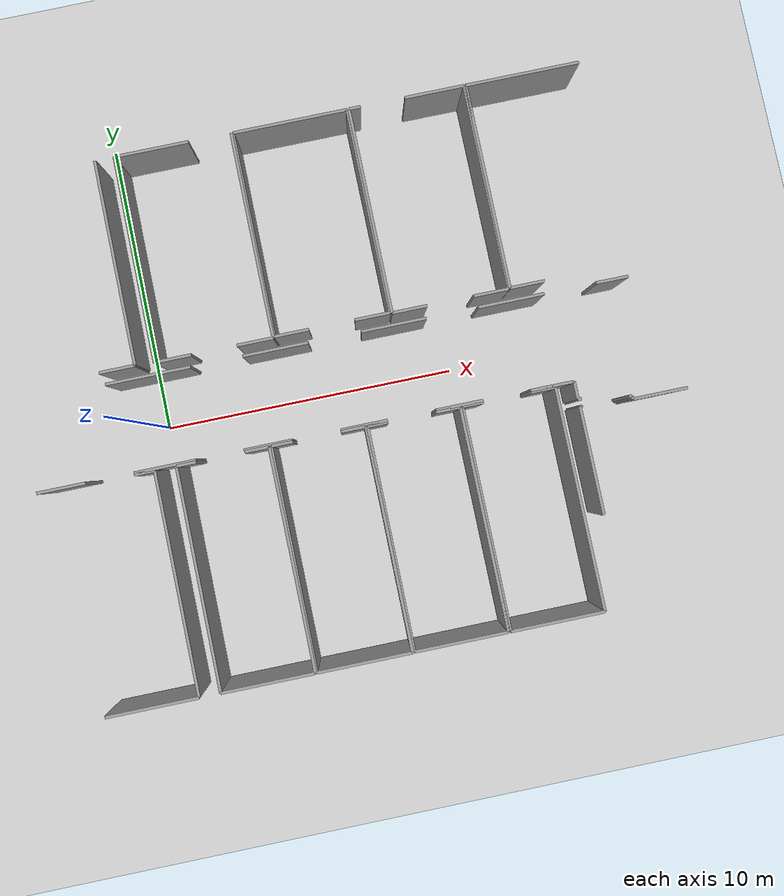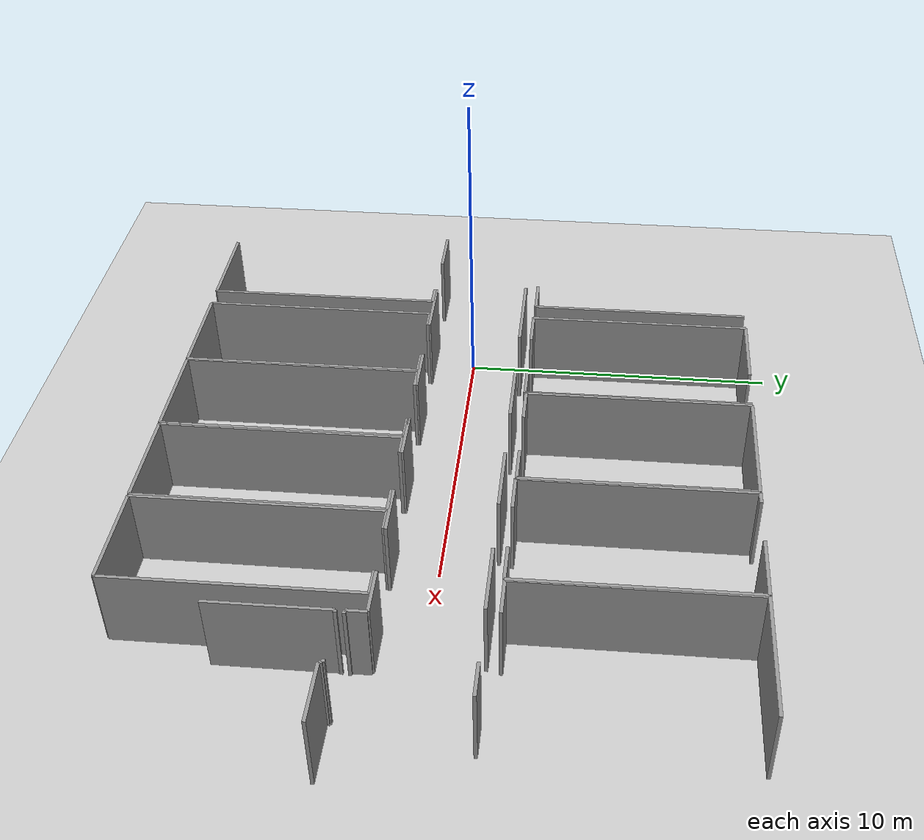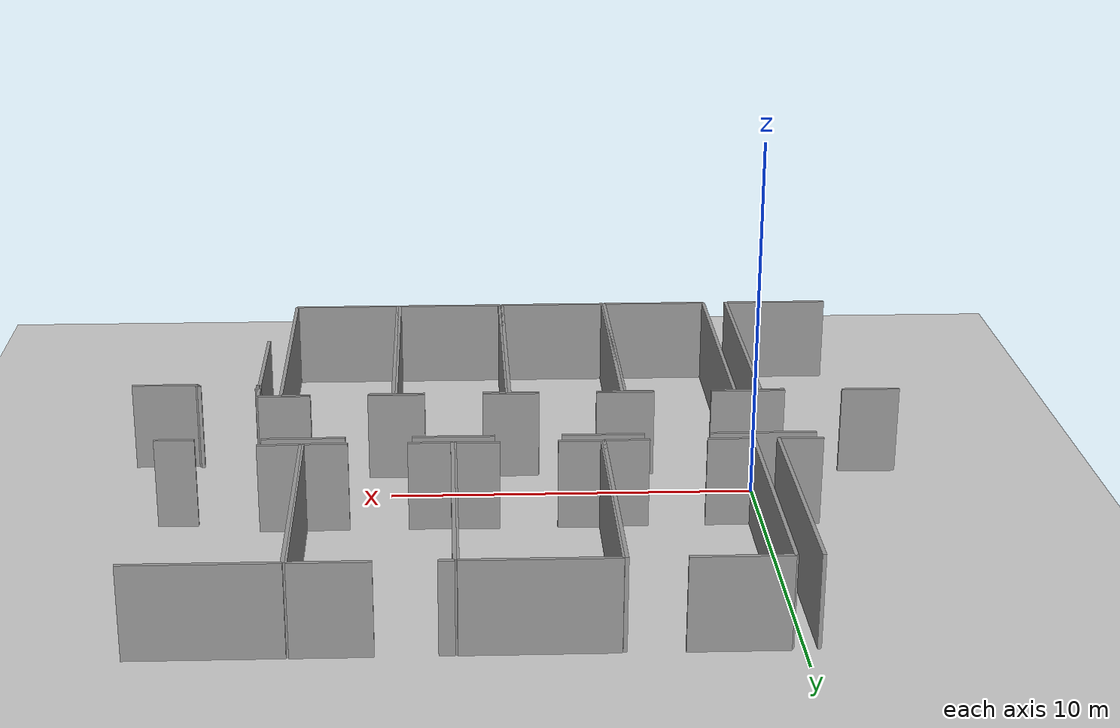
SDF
<sdf version="1.6">
 <world name="default">
  <model name="ground_plane">
   <static>1</static>
   <link name="link">
    <collision name="collision">
     <geometry><plane><normal>0 0 1</normal><size>100 100</size></plane></geometry>
     <surface><friction><ode><mu>100</mu><mu2>50</mu2></ode></friction></surface>
    </collision>
    <visual name="visual">
     <cast_shadows>0</cast_shadows>
     <geometry><plane><normal>0 0 1</normal><size>100 100</size></plane></geometry>
     <material>
      <script><uri>file://media/materials/scripts/gazebo.material</uri><name>Gazebo/Grey</name></script>
     </material>
    </visual>
   </link>
  </model>
  <model name="0510034839_A-40">
   <static>1</static>
   <link name="Wall_77">
    <collision name="Wall_77_Collision">
     <geometry><box><size>0.116789803742 0.1 2.5</size></box></geometry>
     <pose>0.0583949018712 0 1.25 0 0 0</pose>
    </collision>
    <visual name="Wall_77_Visual">
     <pose>0.0583949018712 0 1.25 0 0 0</pose>
     <geometry><box><size>0.116789803742 0.1 2.5</size></box></geometry>
     <material>
      <script><uri>file://media/materials/scripts/gazebo.material</uri><name>Gazebo/Grey</name></script>
      <ambient>1 1 1 1</ambient>
     </material>
    </visual>
    <pose>46.3418132886 -11.0799248483 0 0 0 3.14159265359</pose>
   </link>
   <link name="Wall_78">
    <collision name="Wall_78_Collision">
     <geometry><box><size>0.602609998223 0.1 2.5</size></box></geometry>
     <pose>0.301304999111 0 1.25 0 0 0</pose>
    </collision>
    <visual name="Wall_78_Visual">
     <pose>0.301304999111 0 1.25 0 0 0</pose>
     <geometry><box><size>0.602609998223 0.1 2.5</size></box></geometry>
     <material>
      <script><uri>file://media/materials/scripts/gazebo.material</uri><name>Gazebo/Grey</name></script>
      <ambient>1 1 1 1</ambient>
     </material>
    </visual>
    <pose>46.2250234849 -11.0799248483 0 0 0 1.57079632679</pose>
   </link>
   <link name="Wall_79">
    <collision name="Wall_79_Collision">
     <geometry><box><size>1.46076116485 0.1 2.5</size></box></geometry>
     <pose>0.730380582426 0 1.25 0 0 0</pose>
    </collision>
    <visual name="Wall_79_Visual">
     <pose>0.730380582426 0 1.25 0 0 0</pose>
     <geometry><box><size>1.46076116485 0.1 2.5</size></box></geometry>
     <material>
      <script><uri>file://media/materials/scripts/gazebo.material</uri><name>Gazebo/Grey</name></script>
      <ambient>1 1 1 1</ambient>
     </material>
    </visual>
    <pose>46.2250234849 -10.4773148501 0 0 0 3.14159265359</pose>
   </link>
   <link name="Wall_80">
    <collision name="Wall_80_Collision">
     <geometry><box><size>1.59049940336 0.1 2.5</size></box></geometry>
     <pose>0.795249701678 0 1.25 0 0 0</pose>
    </collision>
    <visual name="Wall_80_Visual">
     <pose>0.795249701678 0 1.25 0 0 0</pose>
     <geometry><box><size>1.59049940336 0.1 2.5</size></box></geometry>
     <material>
      <script><uri>file://media/materials/scripts/gazebo.material</uri><name>Gazebo/Grey</name></script>
      <ambient>1 1 1 1</ambient>
     </material>
    </visual>
    <pose>43.1620839363 -10.4773148501 0 0 0 3.14159265359</pose>
   </link>
   <link name="Wall_81">
    <collision name="Wall_81_Collision">
     <geometry><box><size>1.58097849544 0.1 2.5</size></box></geometry>
     <pose>0.790489247721 0 1.25 0 0 0</pose>
    </collision>
    <visual name="Wall_81_Visual">
     <pose>0.790489247721 0 1.25 0 0 0</pose>
     <geometry><box><size>1.58097849544 0.1 2.5</size></box></geometry>
     <material>
      <script><uri>file://media/materials/scripts/gazebo.material</uri><name>Gazebo/Grey</name></script>
      <ambient>1 1 1 1</ambient>
     </material>
    </visual>
    <pose>39.9488409881 -10.4773148501 0 0 0 3.14159265359</pose>
   </link>
   <link name="Wall_82">
    <collision name="Wall_82_Collision">
     <geometry><box><size>1.62452078097 0.1 2.5</size></box></geometry>
     <pose>0.812260390484 0 1.25 0 0 0</pose>
    </collision>
    <visual name="Wall_82_Visual">
     <pose>0.812260390484 0 1.25 0 0 0</pose>
     <geometry><box><size>1.62452078097 0.1 2.5</size></box></geometry>
     <material>
      <script><uri>file://media/materials/scripts/gazebo.material</uri><name>Gazebo/Grey</name></script>
      <ambient>1 1 1 1</ambient>
     </material>
    </visual>
    <pose>36.7488003656 -10.4773148501 0 0 0 3.14159265359</pose>
   </link>
   <link name="Wall_83">
    <collision name="Wall_83_Collision">
     <geometry><box><size>2.07314596187 0.1 2.5</size></box></geometry>
     <pose>1.03657298093 0 1.25 0 0 0</pose>
    </collision>
    <visual name="Wall_83_Visual">
     <pose>1.03657298093 0 1.25 0 0 0</pose>
     <geometry><box><size>2.07314596187 0.1 2.5</size></box></geometry>
     <material>
      <script><uri>file://media/materials/scripts/gazebo.material</uri><name>Gazebo/Grey</name></script>
      <ambient>1 1 1 1</ambient>
     </material>
    </visual>
    <pose>33.5210856374 -10.4773148501 0 0 0 3.14159265359</pose>
   </link>
   <link name="Wall_84">
    <collision name="Wall_84_Collision">
     <geometry><box><size>1.62452078097 0.1 2.5</size></box></geometry>
     <pose>0.812260390484 0 1.25 0 0 0</pose>
    </collision>
    <visual name="Wall_84_Visual">
     <pose>0.812260390484 0 1.25 0 0 0</pose>
     <geometry><box><size>1.62452078097 0.1 2.5</size></box></geometry>
     <material>
      <script><uri>file://media/materials/scripts/gazebo.material</uri><name>Gazebo/Grey</name></script>
      <ambient>1 1 1 1</ambient>
     </material>
    </visual>
    <pose>29.8337014751 -10.4773148501 0 0 0 3.14159265359</pose>
   </link>
   <link name="Wall_96">
    <collision name="Wall_96_Collision">
     <geometry><box><size>2.86998248153 0.1 2.5</size></box></geometry>
     <pose>1.43499124076 0 1.25 0 0 0</pose>
    </collision>
    <visual name="Wall_96_Visual">
     <pose>1.43499124076 0 1.25 0 0 0</pose>
     <geometry><box><size>2.86998248153 0.1 2.5</size></box></geometry>
     <material>
      <script><uri>file://media/materials/scripts/gazebo.material</uri><name>Gazebo/Grey</name></script>
      <ambient>1 1 1 1</ambient>
     </material>
    </visual>
    <pose>31.0718003402 -7.42668900906 0 0 0 0.0</pose>
   </link>
   <link name="Wall_97">
    <collision name="Wall_97_Collision">
     <geometry><box><size>2.21189732653 0.1 2.5</size></box></geometry>
     <pose>1.10594866326 0 1.25 0 0 0</pose>
    </collision>
    <visual name="Wall_97_Visual">
     <pose>1.10594866326 0 1.25 0 0 0</pose>
     <geometry><box><size>2.21189732653 0.1 2.5</size></box></geometry>
     <material>
      <script><uri>file://media/materials/scripts/gazebo.material</uri><name>Gazebo/Grey</name></script>
      <ambient>1 1 1 1</ambient>
     </material>
    </visual>
    <pose>35.6912179145 -7.42668900906 0 0 0 0.0</pose>
   </link>
   <link name="Wall_98">
    <collision name="Wall_98_Collision">
     <geometry><box><size>2.20770812705 0.1 2.5</size></box></geometry>
     <pose>1.10385406352 0 1.25 0 0 0</pose>
    </collision>
    <visual name="Wall_98_Visual">
     <pose>1.10385406352 0 1.25 0 0 0</pose>
     <geometry><box><size>2.20770812705 0.1 2.5</size></box></geometry>
     <material>
      <script><uri>file://media/materials/scripts/gazebo.material</uri><name>Gazebo/Grey</name></script>
      <ambient>1 1 1 1</ambient>
     </material>
    </visual>
    <pose>39.6877142204 -7.42668900906 0 0 0 0.0</pose>
   </link>
   <link name="Wall_99">
    <collision name="Wall_99_Collision">
     <geometry><box><size>2.23436666921 0.1 2.5</size></box></geometry>
     <pose>1.1171833346 0 1.25 0 0 0</pose>
    </collision>
    <visual name="Wall_99_Visual">
     <pose>1.1171833346 0 1.25 0 0 0</pose>
     <geometry><box><size>2.23436666921 0.1 2.5</size></box></geometry>
     <material>
      <script><uri>file://media/materials/scripts/gazebo.material</uri><name>Gazebo/Grey</name></script>
      <ambient>1 1 1 1</ambient>
     </material>
    </visual>
    <pose>43.6542514027 -7.42668900906 0 0 0 0.0</pose>
   </link>
   <link name="Wall_100">
    <collision name="Wall_100_Collision">
     <geometry><box><size>1.08182902988 0.1 2.5</size></box></geometry>
     <pose>0.540914514941 0 1.25 0 0 0</pose>
    </collision>
    <visual name="Wall_100_Visual">
     <pose>0.540914514941 0 1.25 0 0 0</pose>
     <geometry><box><size>1.08182902988 0.1 2.5</size></box></geometry>
     <material>
      <script><uri>file://media/materials/scripts/gazebo.material</uri><name>Gazebo/Grey</name></script>
      <ambient>1 1 1 1</ambient>
     </material>
    </visual>
    <pose>47.6518902176 -7.42668900906 0 0 0 0.0</pose>
   </link>
   <link name="Wall_118">
    <collision name="Wall_118_Collision">
     <geometry><box><size>1.20471221469 0.1 2.5</size></box></geometry>
     <pose>0.602356107345 0 1.25 0 0 0</pose>
    </collision>
    <visual name="Wall_118_Visual">
     <pose>0.602356107345 0 1.25 0 0 0</pose>
     <geometry><box><size>1.20471221469 0.1 2.5</size></box></geometry>
     <material>
      <script><uri>file://media/materials/scripts/gazebo.material</uri><name>Gazebo/Grey</name></script>
      <ambient>1 1 1 1</ambient>
     </material>
    </visual>
    <pose>32.1535024247 -7.009546297 0 0 0 3.14159265359</pose>
   </link>
   <link name="Wall_122">
    <collision name="Wall_122_Collision">
     <geometry><box><size>7.00358918037 0.1 2.5</size></box></geometry>
     <pose>3.50179459018 0 1.25 0 0 0</pose>
    </collision>
    <visual name="Wall_122_Visual">
     <pose>3.50179459018 0 1.25 0 0 0</pose>
     <geometry><box><size>7.00358918037 0.1 2.5</size></box></geometry>
     <material>
      <script><uri>file://media/materials/scripts/gazebo.material</uri><name>Gazebo/Grey</name></script>
      <ambient>1 1 1 1</ambient>
     </material>
    </visual>
    <pose>32.1420773352 -0.00596643562597 0 0 0 -1.56916500687</pose>
   </link>
   <link name="Wall_123">
    <collision name="Wall_123_Collision">
     <geometry><box><size>1.22527737578 0.1 2.5</size></box></geometry>
     <pose>0.612638687892 0 1.25 0 0 0</pose>
    </collision>
    <visual name="Wall_123_Visual">
     <pose>0.612638687892 0 1.25 0 0 0</pose>
     <geometry><box><size>1.22527737578 0.1 2.5</size></box></geometry>
     <material>
      <script><uri>file://media/materials/scripts/gazebo.material</uri><name>Gazebo/Grey</name></script>
      <ambient>1 1 1 1</ambient>
     </material>
    </visual>
    <pose>36.8008479955 -7.04267905654 0 0 0 3.14159265359</pose>
   </link>
   <link name="Wall_124">
    <collision name="Wall_124_Collision">
     <geometry><box><size>1.23632162896 0.1 2.5</size></box></geometry>
     <pose>0.618160814482 0 1.25 0 0 0</pose>
    </collision>
    <visual name="Wall_124_Visual">
     <pose>0.618160814482 0 1.25 0 0 0</pose>
     <geometry><box><size>1.23632162896 0.1 2.5</size></box></geometry>
     <material>
      <script><uri>file://media/materials/scripts/gazebo.material</uri><name>Gazebo/Grey</name></script>
      <ambient>1 1 1 1</ambient>
     </material>
    </visual>
    <pose>34.0411811004 -7.04267905654 0 0 0 3.14159265359</pose>
   </link>
   <link name="Wall_125">
    <collision name="Wall_125_Collision">
     <geometry><box><size>7.04064792952 0.1 2.5</size></box></geometry>
     <pose>3.52032396476 0 1.25 0 0 0</pose>
    </collision>
    <visual name="Wall_125_Visual">
     <pose>3.52032396476 0 1.25 0 0 0</pose>
     <geometry><box><size>7.04064792952 0.1 2.5</size></box></geometry>
     <material>
      <script><uri>file://media/materials/scripts/gazebo.material</uri><name>Gazebo/Grey</name></script>
      <ambient>1 1 1 1</ambient>
     </material>
    </visual>
    <pose>32.8048594714 -7.04267905654 0 0 0 1.57079632679</pose>
   </link>
   <link name="Wall_126">
    <collision name="Wall_126_Collision">
     <geometry><box><size>2.52748368751 0.1 2.5</size></box></geometry>
     <pose>1.26374184376 0 1.25 0 0 0</pose>
    </collision>
    <visual name="Wall_126_Visual">
     <pose>1.26374184376 0 1.25 0 0 0</pose>
     <geometry><box><size>2.52748368751 0.1 2.5</size></box></geometry>
     <material>
      <script><uri>file://media/materials/scripts/gazebo.material</uri><name>Gazebo/Grey</name></script>
      <ambient>1 1 1 1</ambient>
     </material>
    </visual>
    <pose>32.8048594714 -0.00203112702161 0 0 0 0.0</pose>
   </link>
   <link name="Wall_127">
    <collision name="Wall_127_Collision">
     <geometry><box><size>7.04066638811 0.1 2.5</size></box></geometry>
     <pose>3.52033319405 0 1.25 0 0 0</pose>
    </collision>
    <visual name="Wall_127_Visual">
     <pose>3.52033319405 0 1.25 0 0 0</pose>
     <geometry><box><size>7.04066638811 0.1 2.5</size></box></geometry>
     <material>
      <script><uri>file://media/materials/scripts/gazebo.material</uri><name>Gazebo/Grey</name></script>
      <ambient>1 1 1 1</ambient>
     </material>
    </visual>
    <pose>36.7847259248 -0.00203112702161 0 0 0 -1.56850647468</pose>
   </link>
   <link name="Wall_128">
    <collision name="Wall_128_Collision">
     <geometry><box><size>1.19646076116 0.1 2.5</size></box></geometry>
     <pose>0.598230380582 0 1.25 0 0 0</pose>
    </collision>
    <visual name="Wall_128_Visual">
     <pose>0.598230380582 0 1.25 0 0 0</pose>
     <geometry><box><size>1.19646076116 0.1 2.5</size></box></geometry>
     <material>
      <script><uri>file://media/materials/scripts/gazebo.material</uri><name>Gazebo/Grey</name></script>
      <ambient>1 1 1 1</ambient>
     </material>
    </visual>
    <pose>40.7606570696 -7.00764211542 0 0 0 3.14159265359</pose>
   </link>
   <link name="Wall_129">
    <collision name="Wall_129_Collision">
     <geometry><box><size>1.16764414655 0.1 2.5</size></box></geometry>
     <pose>0.583822073273 0 1.25 0 0 0</pose>
    </collision>
    <visual name="Wall_129_Visual">
     <pose>0.583822073273 0 1.25 0 0 0</pose>
     <geometry><box><size>1.16764414655 0.1 2.5</size></box></geometry>
     <material>
      <script><uri>file://media/materials/scripts/gazebo.material</uri><name>Gazebo/Grey</name></script>
      <ambient>1 1 1 1</ambient>
     </material>
    </visual>
    <pose>38.0119074822 -7.00764211542 0 0 0 3.14159265359</pose>
   </link>
   <link name="Wall_130">
    <collision name="Wall_130_Collision">
     <geometry><box><size>6.99735953487 0.1 2.5</size></box></geometry>
     <pose>3.49867976744 0 1.25 0 0 0</pose>
    </collision>
    <visual name="Wall_130_Visual">
     <pose>3.49867976744 0 1.25 0 0 0</pose>
     <geometry><box><size>6.99735953487 0.1 2.5</size></box></geometry>
     <material>
      <script><uri>file://media/materials/scripts/gazebo.material</uri><name>Gazebo/Grey</name></script>
      <ambient>1 1 1 1</ambient>
     </material>
    </visual>
    <pose>36.8442633356 -7.00764211542 0 0 0 1.57079632679</pose>
   </link>
   <link name="Wall_131">
    <collision name="Wall_131_Collision">
     <geometry><box><size>3.90547642623 0.1 2.5</size></box></geometry>
     <pose>1.95273821312 0 1.25 0 0 0</pose>
    </collision>
    <visual name="Wall_131_Visual">
     <pose>1.95273821312 0 1.25 0 0 0</pose>
     <geometry><box><size>3.90547642623 0.1 2.5</size></box></geometry>
     <material>
      <script><uri>file://media/materials/scripts/gazebo.material</uri><name>Gazebo/Grey</name></script>
      <ambient>1 1 1 1</ambient>
     </material>
    </visual>
    <pose>36.8442633356 -0.0102825805469 0 0 0 0.0</pose>
   </link>
   <link name="Wall_132">
    <collision name="Wall_132_Collision">
     <geometry><box><size>6.99736805148 0.1 2.5</size></box></geometry>
     <pose>3.49868402574 0 1.25 0 0 0</pose>
    </collision>
    <visual name="Wall_132_Visual">
     <pose>3.49868402574 0 1.25 0 0 0</pose>
     <geometry><box><size>6.99736805148 0.1 2.5</size></box></geometry>
     <material>
      <script><uri>file://media/materials/scripts/gazebo.material</uri><name>Gazebo/Grey</name></script>
      <ambient>1 1 1 1</ambient>
     </material>
    </visual>
    <pose>40.7497397619 -0.0102825805469 0 0 0 -1.56923612415</pose>
   </link>
   <link name="Wall_133">
    <collision name="Wall_133_Collision">
     <geometry><box><size>1.19341407063 0.1 2.5</size></box></geometry>
     <pose>0.596707035316 0 1.25 0 0 0</pose>
    </collision>
    <visual name="Wall_133_Visual">
     <pose>0.596707035316 0 1.25 0 0 0</pose>
     <geometry><box><size>1.19341407063 0.1 2.5</size></box></geometry>
     <material>
      <script><uri>file://media/materials/scripts/gazebo.material</uri><name>Gazebo/Grey</name></script>
      <ambient>1 1 1 1</ambient>
     </material>
    </visual>
    <pose>44.7713712646 -7.02998451266 0 0 0 3.14159265359</pose>
   </link>
   <link name="Wall_134">
    <collision name="Wall_134_Collision">
     <geometry><box><size>1.1903673801 0.1 2.5</size></box></geometry>
     <pose>0.59518369005 0 1.25 0 0 0</pose>
    </collision>
    <visual name="Wall_134_Visual">
     <pose>0.59518369005 0 1.25 0 0 0</pose>
     <geometry><box><size>1.1903673801 0.1 2.5</size></box></geometry>
     <material>
      <script><uri>file://media/materials/scripts/gazebo.material</uri><name>Gazebo/Grey</name></script>
      <ambient>1 1 1 1</ambient>
     </material>
    </visual>
    <pose>42.0029451342 -7.02998451266 0 0 0 3.14159265359</pose>
   </link>
   <link name="Wall_135">
    <collision name="Wall_135_Collision">
     <geometry><box><size>7.0255414223 0.1 2.5</size></box></geometry>
     <pose>3.51277071115 0 1.25 0 0 0</pose>
    </collision>
    <visual name="Wall_135_Visual">
     <pose>3.51277071115 0 1.25 0 0 0</pose>
     <geometry><box><size>7.0255414223 0.1 2.5</size></box></geometry>
     <material>
      <script><uri>file://media/materials/scripts/gazebo.material</uri><name>Gazebo/Grey</name></script>
      <ambient>1 1 1 1</ambient>
     </material>
    </visual>
    <pose>40.8125777541 -7.02998451266 0 0 0 1.57079632679</pose>
   </link>
   <link name="Wall_136">
    <collision name="Wall_136_Collision">
     <geometry><box><size>0.399243405184 0.1 2.5</size></box></geometry>
     <pose>0.199621702592 0 1.25 0 0 0</pose>
    </collision>
    <visual name="Wall_136_Visual">
     <pose>0.199621702592 0 1.25 0 0 0</pose>
     <geometry><box><size>0.399243405184 0.1 2.5</size></box></geometry>
     <material>
      <script><uri>file://media/materials/scripts/gazebo.material</uri><name>Gazebo/Grey</name></script>
      <ambient>1 1 1 1</ambient>
     </material>
    </visual>
    <pose>40.8125777541 -0.00444309035977 0 0 0 0.0</pose>
   </link>
   <link name="Wall_137">
    <collision name="Wall_137_Collision">
     <geometry><box><size>2.02503364054 0.1 2.5</size></box></geometry>
     <pose>1.01251682027 0 1.25 0 0 0</pose>
    </collision>
    <visual name="Wall_137_Visual">
     <pose>1.01251682027 0 1.25 0 0 0</pose>
     <geometry><box><size>2.02503364054 0.1 2.5</size></box></geometry>
     <material>
      <script><uri>file://media/materials/scripts/gazebo.material</uri><name>Gazebo/Grey</name></script>
      <ambient>1 1 1 1</ambient>
     </material>
    </visual>
    <pose>42.730977226 -0.00444309035977 0 0 0 0.0</pose>
   </link>
   <link name="Wall_138">
    <collision name="Wall_138_Collision">
     <geometry><box><size>7.025558214 0.1 2.5</size></box></geometry>
     <pose>3.512779107 0 1.25 0 0 0</pose>
    </collision>
    <visual name="Wall_138_Visual">
     <pose>3.512779107 0 1.25 0 0 0</pose>
     <geometry><box><size>7.025558214 0.1 2.5</size></box></geometry>
     <material>
      <script><uri>file://media/materials/scripts/gazebo.material</uri><name>Gazebo/Grey</name></script>
      <ambient>1 1 1 1</ambient>
     </material>
    </visual>
    <pose>44.7560108665 -0.00444309035977 0 0 0 -1.56860996525</pose>
   </link>
   <link name="Wall_140">
    <collision name="Wall_140_Collision">
     <geometry><box><size>1.17018305532 0.1 2.5</size></box></geometry>
     <pose>0.585091527661 0 1.25 0 0 0</pose>
    </collision>
    <visual name="Wall_140_Visual">
     <pose>0.585091527661 0 1.25 0 0 0</pose>
     <geometry><box><size>1.17018305532 0.1 2.5</size></box></geometry>
     <material>
      <script><uri>file://media/materials/scripts/gazebo.material</uri><name>Gazebo/Grey</name></script>
      <ambient>1 1 1 1</ambient>
     </material>
    </visual>
    <pose>45.9850966055 -7.01005407876 0 0 0 3.14159265359</pose>
   </link>
   <link name="Wall_141">
    <collision name="Wall_141_Collision">
     <geometry><box><size>7.0033259705 0.1 2.5</size></box></geometry>
     <pose>3.50166298525 0 1.25 0 0 0</pose>
    </collision>
    <visual name="Wall_141_Visual">
     <pose>3.50166298525 0 1.25 0 0 0</pose>
     <geometry><box><size>7.0033259705 0.1 2.5</size></box></geometry>
     <material>
      <script><uri>file://media/materials/scripts/gazebo.material</uri><name>Gazebo/Grey</name></script>
      <ambient>1 1 1 1</ambient>
     </material>
    </visual>
    <pose>44.8149135502 -7.01005407876 0 0 0 1.57079632679</pose>
   </link>
   <link name="Wall_142">
    <collision name="Wall_142_Collision">
     <geometry><box><size>3.89747886358 0.1 2.5</size></box></geometry>
     <pose>1.94873943179 0 1.25 0 0 0</pose>
    </collision>
    <visual name="Wall_142_Visual">
     <pose>1.94873943179 0 1.25 0 0 0</pose>
     <geometry><box><size>3.89747886358 0.1 2.5</size></box></geometry>
     <material>
      <script><uri>file://media/materials/scripts/gazebo.material</uri><name>Gazebo/Grey</name></script>
      <ambient>1 1 1 1</ambient>
     </material>
    </visual>
    <pose>44.8149135502 -0.00672810825908 0 0 0 0.0</pose>
   </link>
   <link name="Wall_159">
    <collision name="Wall_159_Collision">
     <geometry><box><size>3.09823038058 0.1 2.5</size></box></geometry>
     <pose>1.54911519029 0 1.25 0 0 0</pose>
    </collision>
    <visual name="Wall_159_Visual">
     <pose>1.54911519029 0 1.25 0 0 0</pose>
     <geometry><box><size>3.09823038058 0.1 2.5</size></box></geometry>
     <material>
      <script><uri>file://media/materials/scripts/gazebo.material</uri><name>Gazebo/Grey</name></script>
      <ambient>1 1 1 1</ambient>
     </material>
    </visual>
    <pose>32.1429659532 -18.0103841369 0 0 0 3.14159265359</pose>
   </link>
   <link name="Wall_162">
    <collision name="Wall_162_Collision">
     <geometry><box><size>0.682204788382 0.1 2.5</size></box></geometry>
     <pose>0.341102394191 0 1.25 0 0 0</pose>
    </collision>
    <visual name="Wall_162_Visual">
     <pose>0.341102394191 0 1.25 0 0 0</pose>
     <geometry><box><size>0.682204788382 0.1 2.5</size></box></geometry>
     <material>
      <script><uri>file://media/materials/scripts/gazebo.material</uri><name>Gazebo/Grey</name></script>
      <ambient>1 1 1 1</ambient>
     </material>
    </visual>
    <pose>31.4495899662 -10.5401528423 0 0 0 0.0</pose>
   </link>
   <link name="Wall_163">
    <collision name="Wall_163_Collision">
     <geometry><box><size>7.47023964745 0.1 2.5</size></box></geometry>
     <pose>3.73511982373 0 1.25 0 0 0</pose>
    </collision>
    <visual name="Wall_163_Visual">
     <pose>3.73511982373 0 1.25 0 0 0</pose>
     <geometry><box><size>7.47023964745 0.1 2.5</size></box></geometry>
     <material>
      <script><uri>file://media/materials/scripts/gazebo.material</uri><name>Gazebo/Grey</name></script>
      <ambient>1 1 1 1</ambient>
     </material>
    </visual>
    <pose>32.1317947546 -10.5401528423 0 0 0 -1.56930089916</pose>
   </link>
   <link name="Wall_164">
    <collision name="Wall_164_Collision">
     <geometry><box><size>3.1270469952 0.1 2.5</size></box></geometry>
     <pose>1.5635234976 0 1.25 0 0 0</pose>
    </collision>
    <visual name="Wall_164_Visual">
     <pose>1.5635234976 0 1.25 0 0 0</pose>
     <geometry><box><size>3.1270469952 0.1 2.5</size></box></geometry>
     <material>
      <script><uri>file://media/materials/scripts/gazebo.material</uri><name>Gazebo/Grey</name></script>
      <ambient>1 1 1 1</ambient>
     </material>
    </visual>
    <pose>35.9825576967 -18.0103841369 0 0 0 3.14159265359</pose>
   </link>
   <link name="Wall_165">
    <collision name="Wall_165_Collision">
     <geometry><box><size>7.47378576688 0.1 2.5</size></box></geometry>
     <pose>3.73689288344 0 1.25 0 0 0</pose>
    </collision>
    <visual name="Wall_165_Visual">
     <pose>3.73689288344 0 1.25 0 0 0</pose>
     <geometry><box><size>7.47378576688 0.1 2.5</size></box></geometry>
     <material>
      <script><uri>file://media/materials/scripts/gazebo.material</uri><name>Gazebo/Grey</name></script>
      <ambient>1 1 1 1</ambient>
     </material>
    </visual>
    <pose>32.8555107015 -18.0103841369 0 0 0 1.57079632679</pose>
   </link>
   <link name="Wall_166">
    <collision name="Wall_166_Collision">
     <geometry><box><size>0.666209663087 0.1 2.5</size></box></geometry>
     <pose>0.333104831543 0 1.25 0 0 0</pose>
    </collision>
    <visual name="Wall_166_Visual">
     <pose>0.333104831543 0 1.25 0 0 0</pose>
     <geometry><box><size>0.666209663087 0.1 2.5</size></box></geometry>
     <material>
      <script><uri>file://media/materials/scripts/gazebo.material</uri><name>Gazebo/Grey</name></script>
      <ambient>1 1 1 1</ambient>
     </material>
    </visual>
    <pose>32.8555107015 -10.53659837 0 0 0 0.0</pose>
   </link>
   <link name="Wall_167">
    <collision name="Wall_167_Collision">
     <geometry><box><size>0.817909462513 0.1 2.5</size></box></geometry>
     <pose>0.408954731257 0 1.25 0 0 0</pose>
    </collision>
    <visual name="Wall_167_Visual">
     <pose>0.408954731257 0 1.25 0 0 0</pose>
     <geometry><box><size>0.817909462513 0.1 2.5</size></box></geometry>
     <material>
      <script><uri>file://media/materials/scripts/gazebo.material</uri><name>Gazebo/Grey</name></script>
      <ambient>1 1 1 1</ambient>
     </material>
    </visual>
    <pose>35.1404016554 -10.53659837 0 0 0 0.0</pose>
   </link>
   <link name="Wall_168">
    <collision name="Wall_168_Collision">
     <geometry><box><size>7.47382509735 0.1 2.5</size></box></geometry>
     <pose>3.73691254867 0 1.25 0 0 0</pose>
    </collision>
    <visual name="Wall_168_Visual">
     <pose>3.73691254867 0 1.25 0 0 0</pose>
     <geometry><box><size>7.47382509735 0.1 2.5</size></box></geometry>
     <material>
      <script><uri>file://media/materials/scripts/gazebo.material</uri><name>Gazebo/Grey</name></script>
      <ambient>1 1 1 1</ambient>
     </material>
    </visual>
    <pose>35.9583111179 -10.53659837 0 0 0 -1.56755212171</pose>
   </link>
   <link name="Wall_169">
    <collision name="Wall_169_Collision">
     <geometry><box><size>3.16678091756 0.1 2.5</size></box></geometry>
     <pose>1.58339045878 0 1.25 0 0 0</pose>
    </collision>
    <visual name="Wall_169_Visual">
     <pose>1.58339045878 0 1.25 0 0 0</pose>
     <geometry><box><size>3.16678091756 0.1 2.5</size></box></geometry>
     <material>
      <script><uri>file://media/materials/scripts/gazebo.material</uri><name>Gazebo/Grey</name></script>
      <ambient>1 1 1 1</ambient>
     </material>
    </visual>
    <pose>39.1969431538 -18.0061949374 0 0 0 3.14159265359</pose>
   </link>
   <link name="Wall_170">
    <collision name="Wall_170_Collision">
     <geometry><box><size>7.47505522127 0.1 2.5</size></box></geometry>
     <pose>3.73752761063 0 1.25 0 0 0</pose>
    </collision>
    <visual name="Wall_170_Visual">
     <pose>3.73752761063 0 1.25 0 0 0</pose>
     <geometry><box><size>7.47505522127 0.1 2.5</size></box></geometry>
     <material>
      <script><uri>file://media/materials/scripts/gazebo.material</uri><name>Gazebo/Grey</name></script>
      <ambient>1 1 1 1</ambient>
     </material>
    </visual>
    <pose>36.0301622363 -18.0061949374 0 0 0 1.57079632679</pose>
   </link>
   <link name="Wall_171">
    <collision name="Wall_171_Collision">
     <geometry><box><size>0.724096783203 0.1 2.5</size></box></geometry>
     <pose>0.362048391601 0 1.25 0 0 0</pose>
    </collision>
    <visual name="Wall_171_Visual">
     <pose>0.362048391601 0 1.25 0 0 0</pose>
     <geometry><box><size>0.724096783203 0.1 2.5</size></box></geometry>
     <material>
      <script><uri>file://media/materials/scripts/gazebo.material</uri><name>Gazebo/Grey</name></script>
      <ambient>1 1 1 1</ambient>
     </material>
    </visual>
    <pose>36.0301622363 -10.5311397162 0 0 0 0.0</pose>
   </link>
   <link name="Wall_172">
    <collision name="Wall_172_Collision">
     <geometry><box><size>0.835174042197 0.1 2.5</size></box></geometry>
     <pose>0.417587021098 0 1.25 0 0 0</pose>
    </collision>
    <visual name="Wall_172_Visual">
     <pose>0.417587021098 0 1.25 0 0 0</pose>
     <geometry><box><size>0.835174042197 0.1 2.5</size></box></geometry>
     <material>
      <script><uri>file://media/materials/scripts/gazebo.material</uri><name>Gazebo/Grey</name></script>
      <ambient>1 1 1 1</ambient>
     </material>
    </visual>
    <pose>38.3603727118 -10.5311397162 0 0 0 0.0</pose>
   </link>
   <link name="Wall_173">
    <collision name="Wall_173_Collision">
     <geometry><box><size>7.4750553517 0.1 2.5</size></box></geometry>
     <pose>3.73752767585 0 1.25 0 0 0</pose>
    </collision>
    <visual name="Wall_173_Visual">
     <pose>3.73752767585 0 1.25 0 0 0</pose>
     <geometry><box><size>7.4750553517 0.1 2.5</size></box></geometry>
     <material>
      <script><uri>file://media/materials/scripts/gazebo.material</uri><name>Gazebo/Grey</name></script>
      <ambient>1 1 1 1</ambient>
     </material>
    </visual>
    <pose>39.195546754 -10.5311397162 0 0 0 -1.57060951884</pose>
   </link>
   <link name="Wall_174">
    <collision name="Wall_174_Collision">
     <geometry><box><size>3.12641226801 0.1 2.5</size></box></geometry>
     <pose>1.563206134 0 1.25 0 0 0</pose>
    </collision>
    <visual name="Wall_174_Visual">
     <pose>1.563206134 0 1.25 0 0 0</pose>
     <geometry><box><size>3.12641226801 0.1 2.5</size></box></geometry>
     <material>
      <script><uri>file://media/materials/scripts/gazebo.material</uri><name>Gazebo/Grey</name></script>
      <ambient>1 1 1 1</ambient>
     </material>
    </visual>
    <pose>42.3854317414 -17.9978165385 0 0 0 3.14159265359</pose>
   </link>
   <link name="Wall_175">
    <collision name="Wall_175_Collision">
     <geometry><box><size>7.45410922386 0.1 2.5</size></box></geometry>
     <pose>3.72705461193 0 1.25 0 0 0</pose>
    </collision>
    <visual name="Wall_175_Visual">
     <pose>3.72705461193 0 1.25 0 0 0</pose>
     <geometry><box><size>7.45410922386 0.1 2.5</size></box></geometry>
     <material>
      <script><uri>file://media/materials/scripts/gazebo.material</uri><name>Gazebo/Grey</name></script>
      <ambient>1 1 1 1</ambient>
     </material>
    </visual>
    <pose>39.2590194734 -17.9978165385 0 0 0 1.57079632679</pose>
   </link>
   <link name="Wall_176">
    <collision name="Wall_176_Collision">
     <geometry><box><size>0.690329296468 0.1 2.5</size></box></geometry>
     <pose>0.345164648234 0 1.25 0 0 0</pose>
    </collision>
    <visual name="Wall_176_Visual">
     <pose>0.345164648234 0 1.25 0 0 0</pose>
     <geometry><box><size>0.690329296468 0.1 2.5</size></box></geometry>
     <material>
      <script><uri>file://media/materials/scripts/gazebo.material</uri><name>Gazebo/Grey</name></script>
      <ambient>1 1 1 1</ambient>
     </material>
    </visual>
    <pose>39.2590194734 -10.5437073146 0 0 0 0.0</pose>
   </link>
   <link name="Wall_177">
    <collision name="Wall_177_Collision">
     <geometry><box><size>0.813466372153 0.1 2.5</size></box></geometry>
     <pose>0.406733186077 0 1.25 0 0 0</pose>
    </collision>
    <visual name="Wall_177_Visual">
     <pose>0.406733186077 0 1.25 0 0 0</pose>
     <geometry><box><size>0.813466372153 0.1 2.5</size></box></geometry>
     <material>
      <script><uri>file://media/materials/scripts/gazebo.material</uri><name>Gazebo/Grey</name></script>
      <ambient>1 1 1 1</ambient>
     </material>
    </visual>
    <pose>41.5621905705 -10.5437073146 0 0 0 0.0</pose>
   </link>
   <link name="Wall_178">
    <collision name="Wall_178_Collision">
     <geometry><box><size>7.45411563285 0.1 2.5</size></box></geometry>
     <pose>3.72705781642 0 1.25 0 0 0</pose>
    </collision>
    <visual name="Wall_178_Visual">
     <pose>3.72705781642 0 1.25 0 0 0</pose>
     <geometry><box><size>7.45411563285 0.1 2.5</size></box></geometry>
     <material>
      <script><uri>file://media/materials/scripts/gazebo.material</uri><name>Gazebo/Grey</name></script>
      <ambient>1 1 1 1</ambient>
     </material>
    </visual>
    <pose>42.3756569426 -10.5437073146 0 0 0 -1.56948499731</pose>
   </link>
   <link name="Wall_179">
    <collision name="Wall_179_Collision">
     <geometry><box><size>3.13809124838 0.1 2.5</size></box></geometry>
     <pose>1.56904562419 0 1.25 0 0 0</pose>
    </collision>
    <visual name="Wall_179_Visual">
     <pose>1.56904562419 0 1.25 0 0 0</pose>
     <geometry><box><size>3.13809124838 0.1 2.5</size></box></geometry>
     <material>
      <script><uri>file://media/materials/scripts/gazebo.material</uri><name>Gazebo/Grey</name></script>
      <ambient>1 1 1 1</ambient>
     </material>
    </visual>
    <pose>45.5883921091 -17.9968009749 0 0 0 3.14159265359</pose>
   </link>
   <link name="Wall_180">
    <collision name="Wall_180_Collision">
     <geometry><box><size>7.45829842334 0.1 2.5</size></box></geometry>
     <pose>3.72914921167 0 1.25 0 0 0</pose>
    </collision>
    <visual name="Wall_180_Visual">
     <pose>3.72914921167 0 1.25 0 0 0</pose>
     <geometry><box><size>7.45829842334 0.1 2.5</size></box></geometry>
     <material>
      <script><uri>file://media/materials/scripts/gazebo.material</uri><name>Gazebo/Grey</name></script>
      <ambient>1 1 1 1</ambient>
     </material>
    </visual>
    <pose>42.4503008607 -17.9968009749 0 0 0 1.57079632679</pose>
   </link>
   <link name="Wall_181">
    <collision name="Wall_181_Collision">
     <geometry><box><size>0.701500495087 0.1 2.5</size></box></geometry>
     <pose>0.350750247544 0 1.25 0 0 0</pose>
    </collision>
    <visual name="Wall_181_Visual">
     <pose>0.350750247544 0 1.25 0 0 0</pose>
     <geometry><box><size>0.701500495087 0.1 2.5</size></box></geometry>
     <material>
      <script><uri>file://media/materials/scripts/gazebo.material</uri><name>Gazebo/Grey</name></script>
      <ambient>1 1 1 1</ambient>
     </material>
    </visual>
    <pose>42.4503008607 -10.5385025516 0 0 0 0.0</pose>
   </link>
   <link name="Wall_182">
    <collision name="Wall_182_Collision">
     <geometry><box><size>0.825780079722 0.1 2.5</size></box></geometry>
     <pose>0.412890039861 0 1.25 0 0 0</pose>
    </collision>
    <visual name="Wall_182_Visual">
     <pose>0.412890039861 0 1.25 0 0 0</pose>
     <geometry><box><size>0.825780079722 0.1 2.5</size></box></geometry>
     <material>
      <script><uri>file://media/materials/scripts/gazebo.material</uri><name>Gazebo/Grey</name></script>
      <ambient>1 1 1 1</ambient>
     </material>
    </visual>
    <pose>44.7576611572 -10.5385025516 0 0 0 0.0</pose>
   </link>
   <link name="Wall_183">
    <collision name="Wall_183_Collision">
     <geometry><box><size>7.45830006655 0.1 2.5</size></box></geometry>
     <pose>3.72915003327 0 1.25 0 0 0</pose>
    </collision>
    <visual name="Wall_183_Visual">
     <pose>3.72915003327 0 1.25 0 0 0</pose>
     <geometry><box><size>7.45830006655 0.1 2.5</size></box></geometry>
     <material>
      <script><uri>file://media/materials/scripts/gazebo.material</uri><name>Gazebo/Grey</name></script>
      <ambient>1 1 1 1</ambient>
     </material>
    </visual>
    <pose>45.583441237 -10.5385025516 0 0 0 -1.5701325197</pose>
   </link>
   <link name="Wall_188">
    <collision name="Wall_188_Collision">
     <geometry><box><size>3.62111864321 0.1 2.5</size></box></geometry>
     <pose>1.8105593216 0 1.25 0 0 0</pose>
    </collision>
    <visual name="Wall_188_Visual">
     <pose>1.8105593216 0 1.25 0 0 0</pose>
     <geometry><box><size>3.62111864321 0.1 2.5</size></box></geometry>
     <material>
      <script><uri>file://media/materials/scripts/gazebo.material</uri><name>Gazebo/Grey</name></script>
      <ambient>1 1 1 1</ambient>
     </material>
    </visual>
    <pose>46.2341635565 -14.9483332064 0 0 0 1.57079632679</pose>
   </link>
   <link name="Wall_189">
    <collision name="Wall_189_Collision">
     <geometry><box><size>0.0898773707061 0.1 2.5</size></box></geometry>
     <pose>0.044938685353 0 1.25 0 0 0</pose>
    </collision>
    <visual name="Wall_189_Visual">
     <pose>0.044938685353 0 1.25 0 0 0</pose>
     <geometry><box><size>0.0898773707061 0.1 2.5</size></box></geometry>
     <material>
      <script><uri>file://media/materials/scripts/gazebo.material</uri><name>Gazebo/Grey</name></script>
      <ambient>1 1 1 1</ambient>
     </material>
    </visual>
    <pose>46.2341635565 -11.3272145632 0 0 0 0.0</pose>
   </link>
   <link name="Wall_190">
    <collision name="Wall_190_Collision">
     <geometry><box><size>0.104349150735 0.1 2.5</size></box></geometry>
     <pose>0.0521745753675 0 1.25 0 0 0</pose>
    </collision>
    <visual name="Wall_190_Visual">
     <pose>0.0521745753675 0 1.25 0 0 0</pose>
     <geometry><box><size>0.104349150735 0.1 2.5</size></box></geometry>
     <material>
      <script><uri>file://media/materials/scripts/gazebo.material</uri><name>Gazebo/Grey</name></script>
      <ambient>1 1 1 1</ambient>
     </material>
    </visual>
    <pose>47.8843273161 -11.3272145632 0 0 0 0.0</pose>
   </link>
   <link name="Wall_191">
    <collision name="Wall_191_Collision">
     <geometry><box><size>0.109426968289 0.1 2.5</size></box></geometry>
     <pose>0.0547134841445 0 1.25 0 0 0</pose>
    </collision>
    <visual name="Wall_191_Visual">
     <pose>0.0547134841445 0 1.25 0 0 0</pose>
     <geometry><box><size>0.109426968289 0.1 2.5</size></box></geometry>
     <material>
      <script><uri>file://media/materials/scripts/gazebo.material</uri><name>Gazebo/Grey</name></script>
      <ambient>1 1 1 1</ambient>
     </material>
    </visual>
    <pose>47.9886764669 -11.3272145632 0 0 0 -1.57079632679</pose>
   </link>
   <link name="Wall_192">
    <collision name="Wall_192_Collision">
     <geometry><box><size>1.84946809861 0.1 2.5</size></box></geometry>
     <pose>0.924734049306 0 1.25 0 0 0</pose>
    </collision>
    <visual name="Wall_192_Visual">
     <pose>0.924734049306 0 1.25 0 0 0</pose>
     <geometry><box><size>1.84946809861 0.1 2.5</size></box></geometry>
     <material>
      <script><uri>file://media/materials/scripts/gazebo.material</uri><name>Gazebo/Grey</name></script>
      <ambient>1 1 1 1</ambient>
     </material>
    </visual>
    <pose>47.9886764669 -11.4366415315 0 0 0 0.0</pose>
   </link>
   <pose>-32.5 9.12912763094 0 0 0 0</pose>
  </model>
 </world>
</sdf>
